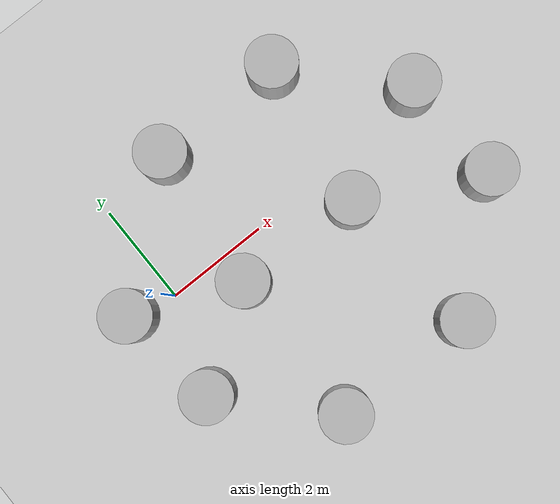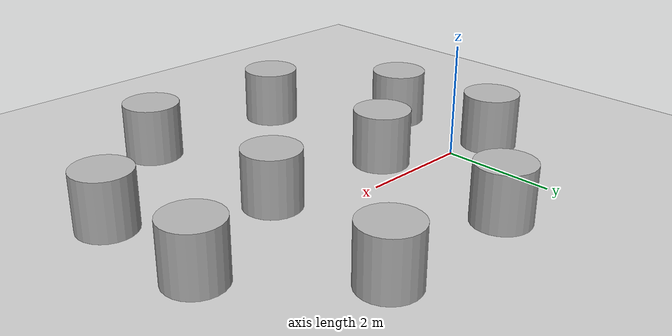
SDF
<sdf version='1.9'>
  <world name='empty'>
    <physics name='1ms' type='ignored'>
      <max_step_size>0.001</max_step_size>
      <real_time_factor>1</real_time_factor>
      <real_time_update_rate>1000</real_time_update_rate>
    </physics>
    <plugin name='gz::sim::systems::Physics' filename='ignition-gazebo-physics-system'/>
    <plugin name='gz::sim::systems::UserCommands' filename='ignition-gazebo-user-commands-system'/>
    <plugin name='gz::sim::systems::SceneBroadcaster' filename='ignition-gazebo-scene-broadcaster-system'/>
    <plugin name='gz::sim::systems::Contact' filename='ignition-gazebo-contact-system'/>
    <gravity>0 0 -9.8</gravity>
    <magnetic_field>6e-06 2.3e-05 -4.2e-05</magnetic_field>
    <atmosphere type='adiabatic'/>
    <scene>
      <ambient>0.4 0.4 0.4 1</ambient>
      <background>0.7 0.7 0.7 1</background>
      <shadows>true</shadows>
    </scene>
    <model name='ground_plane'>
      <static>true</static>
      <link name='link'>
        <collision name='collision'>
          <geometry>
            <plane>
              <normal>0 0 1</normal>
              <size>100 100</size>
            </plane>
          </geometry>
          <surface>
            <friction>
              <ode/>
            </friction>
            <bounce/>
            <contact/>
          </surface>
        </collision>
        <visual name='visual'>
          <geometry>
            <plane>
              <normal>0 0 1</normal>
              <size>100 100</size>
            </plane>
          </geometry>
          <material>
            <ambient>0.8 0.8 0.8 1</ambient>
            <diffuse>0.8 0.8 0.8 1</diffuse>
            <specular>0.8 0.8 0.8 1</specular>
          </material>
        </visual>
        <pose>0 0 0 0 -0 0</pose>
        <inertial>
          <pose>0 0 0 0 -0 0</pose>
          <mass>1</mass>
          <inertia>
            <ixx>1</ixx>
            <ixy>0</ixy>
            <ixz>0</ixz>
            <iyy>1</iyy>
            <iyz>0</iyz>
            <izz>1</izz>
          </inertia>
        </inertial>
        <enable_wind>false</enable_wind>
      </link>
      <pose>0 0 0 0 -0 0</pose>
      <self_collide>false</self_collide>
    </model>
    <model name='cylinder'>
      <pose>4.06462 2.13311 0.5 0 -0 0</pose>
      <link name='cylinder_link'>
        <inertial>
          <inertia>
            <ixx>0.14580000000000001</ixx>
            <ixy>0</ixy>
            <ixz>0</ixz>
            <iyy>0.14580000000000001</iyy>
            <iyz>0</iyz>
            <izz>0.125</izz>
          </inertia>
          <mass>1</mass>
          <pose>0 0 0 0 -0 0</pose>
        </inertial>
        <collision name='cylinder_collision'>
          <geometry>
            <cylinder>
              <radius>0.5</radius>
              <length>1</length>
            </cylinder>
          </geometry>
          <surface>
            <friction>
              <ode/>
            </friction>
            <bounce/>
            <contact/>
          </surface>
        </collision>
        <visual name='cylinder_visual'>
          <geometry>
            <cylinder>
              <radius>0.5</radius>
              <length>1</length>
            </cylinder>
          </geometry>
          <material>
            <ambient>0.3 0.3 0.3 1</ambient>
            <diffuse>0.7 0.7 0.7 1</diffuse>
            <specular>1 1 1 1</specular>
          </material>
        </visual>
        <pose>0 0 0 0 -0 0</pose>
        <enable_wind>false</enable_wind>
      </link>
      <static>false</static>
      <self_collide>false</self_collide>
    </model>
    <model name='cylinder_1'>
      <pose>5.84793 0.239717 0.5 0 -0 0</pose>
      <link name='cylinder_link'>
        <inertial>
          <inertia>
            <ixx>0.14580000000000001</ixx>
            <ixy>0</ixy>
            <ixz>0</ixz>
            <iyy>0.14580000000000001</iyy>
            <iyz>0</iyz>
            <izz>0.125</izz>
          </inertia>
          <mass>1</mass>
        </inertial>
        <collision name='cylinder_collision'>
          <geometry>
            <cylinder>
              <radius>0.5</radius>
              <length>1</length>
            </cylinder>
          </geometry>
          <surface>
            <friction>
              <ode/>
            </friction>
            <bounce/>
            <contact/>
          </surface>
        </collision>
        <visual name='cylinder_visual'>
          <geometry>
            <cylinder>
              <radius>0.5</radius>
              <length>1</length>
            </cylinder>
          </geometry>
          <material>
            <ambient>0.3 0.3 0.3 1</ambient>
            <diffuse>0.7 0.7 0.7 1</diffuse>
            <specular>1 1 1 1</specular>
          </material>
        </visual>
      </link>
      <static>false</static>
      <self_collide>false</self_collide>
    </model>
    <model name='cylinder_2'>
      <pose>5.9165 -1.87991 0.5 0 -0 0</pose>
      <link name='cylinder_link'>
        <inertial>
          <inertia>
            <ixx>0.14580000000000001</ixx>
            <ixy>0</ixy>
            <ixz>0</ixz>
            <iyy>0.14580000000000001</iyy>
            <iyz>0</iyz>
            <izz>0.125</izz>
          </inertia>
          <mass>1</mass>
        </inertial>
        <collision name='cylinder_collision'>
          <geometry>
            <cylinder>
              <radius>0.5</radius>
              <length>1</length>
            </cylinder>
          </geometry>
          <surface>
            <friction>
              <ode/>
            </friction>
            <bounce/>
            <contact/>
          </surface>
        </collision>
        <visual name='cylinder_visual'>
          <geometry>
            <cylinder>
              <radius>0.5</radius>
              <length>1</length>
            </cylinder>
          </geometry>
          <material>
            <ambient>0.3 0.3 0.3 1</ambient>
            <diffuse>0.7 0.7 0.7 1</diffuse>
            <specular>1 1 1 1</specular>
          </material>
        </visual>
      </link>
      <static>false</static>
      <self_collide>false</self_collide>
    </model>
    <model name='cylinder_3'>
      <pose>3.84673 -3.6952 0.5 0 -0 0</pose>
      <link name='cylinder_link'>
        <inertial>
          <inertia>
            <ixx>0.14580000000000001</ixx>
            <ixy>0</ixy>
            <ixz>0</ixz>
            <iyy>0.14580000000000001</iyy>
            <iyz>0</iyz>
            <izz>0.125</izz>
          </inertia>
          <mass>1</mass>
        </inertial>
        <collision name='cylinder_collision'>
          <geometry>
            <cylinder>
              <radius>0.5</radius>
              <length>1</length>
            </cylinder>
          </geometry>
          <surface>
            <friction>
              <ode/>
            </friction>
            <bounce/>
            <contact/>
          </surface>
        </collision>
        <visual name='cylinder_visual'>
          <geometry>
            <cylinder>
              <radius>0.5</radius>
              <length>1</length>
            </cylinder>
          </geometry>
          <material>
            <ambient>0.3 0.3 0.3 1</ambient>
            <diffuse>0.7 0.7 0.7 1</diffuse>
            <specular>1 1 1 1</specular>
          </material>
        </visual>
      </link>
      <static>false</static>
      <self_collide>false</self_collide>
    </model>
    <model name='cylinder_4'>
      <pose>1.11398 -3.64121 0.5 0 -0 0</pose>
      <link name='cylinder_link'>
        <inertial>
          <inertia>
            <ixx>0.14580000000000001</ixx>
            <ixy>0</ixy>
            <ixz>0</ixz>
            <iyy>0.14580000000000001</iyy>
            <iyz>0</iyz>
            <izz>0.125</izz>
          </inertia>
          <mass>1</mass>
        </inertial>
        <collision name='cylinder_collision'>
          <geometry>
            <cylinder>
              <radius>0.5</radius>
              <length>1</length>
            </cylinder>
          </geometry>
          <surface>
            <friction>
              <ode/>
            </friction>
            <bounce/>
            <contact/>
          </surface>
        </collision>
        <visual name='cylinder_visual'>
          <geometry>
            <cylinder>
              <radius>0.5</radius>
              <length>1</length>
            </cylinder>
          </geometry>
          <material>
            <ambient>0.3 0.3 0.3 1</ambient>
            <diffuse>0.7 0.7 0.7 1</diffuse>
            <specular>1 1 1 1</specular>
          </material>
        </visual>
      </link>
      <static>false</static>
      <self_collide>false</self_collide>
    </model>
    <model name='cylinder_5'>
      <pose>-0.608622 -1.82767 0.5 0 -0 0</pose>
      <link name='cylinder_link'>
        <inertial>
          <inertia>
            <ixx>0.14580000000000001</ixx>
            <ixy>0</ixy>
            <ixz>0</ixz>
            <iyy>0.14580000000000001</iyy>
            <iyz>0</iyz>
            <izz>0.125</izz>
          </inertia>
          <mass>1</mass>
        </inertial>
        <collision name='cylinder_collision'>
          <geometry>
            <cylinder>
              <radius>0.5</radius>
              <length>1</length>
            </cylinder>
          </geometry>
          <surface>
            <friction>
              <ode/>
            </friction>
            <bounce/>
            <contact/>
          </surface>
        </collision>
        <visual name='cylinder_visual'>
          <geometry>
            <cylinder>
              <radius>0.5</radius>
              <length>1</length>
            </cylinder>
          </geometry>
          <material>
            <ambient>0.3 0.3 0.3 1</ambient>
            <diffuse>0.7 0.7 0.7 1</diffuse>
            <specular>1 1 1 1</specular>
          </material>
        </visual>
      </link>
      <static>false</static>
      <self_collide>false</self_collide>
    </model>
    <model name='cylinder_6'>
      <pose>-0.836284 0.197467 0.5 0 -0 0</pose>
      <link name='cylinder_link'>
        <inertial>
          <inertia>
            <ixx>0.14580000000000001</ixx>
            <ixy>0</ixy>
            <ixz>0</ixz>
            <iyy>0.14580000000000001</iyy>
            <iyz>0</iyz>
            <izz>0.125</izz>
          </inertia>
          <mass>1</mass>
        </inertial>
        <collision name='cylinder_collision'>
          <geometry>
            <cylinder>
              <radius>0.5</radius>
              <length>1</length>
            </cylinder>
          </geometry>
          <surface>
            <friction>
              <ode/>
            </friction>
            <bounce/>
            <contact/>
          </surface>
        </collision>
        <visual name='cylinder_visual'>
          <geometry>
            <cylinder>
              <radius>0.5</radius>
              <length>1</length>
            </cylinder>
          </geometry>
          <material>
            <ambient>0.3 0.3 0.3 1</ambient>
            <diffuse>0.7 0.7 0.7 1</diffuse>
            <specular>1 1 1 1</specular>
          </material>
        </visual>
      </link>
      <static>false</static>
      <self_collide>false</self_collide>
    </model>
    <model name='cylinder_7'>
      <pose>1.47805 2.119 0.5 0 -0 0</pose>
      <link name='cylinder_link'>
        <inertial>
          <inertia>
            <ixx>0.14580000000000001</ixx>
            <ixy>0</ixy>
            <ixz>0</ixz>
            <iyy>0.14580000000000001</iyy>
            <iyz>0</iyz>
            <izz>0.125</izz>
          </inertia>
          <mass>1</mass>
        </inertial>
        <collision name='cylinder_collision'>
          <geometry>
            <cylinder>
              <radius>0.5</radius>
              <length>1</length>
            </cylinder>
          </geometry>
          <surface>
            <friction>
              <ode/>
            </friction>
            <bounce/>
            <contact/>
          </surface>
        </collision>
        <visual name='cylinder_visual'>
          <geometry>
            <cylinder>
              <radius>0.5</radius>
              <length>1</length>
            </cylinder>
          </geometry>
          <material>
            <ambient>0.3 0.3 0.3 1</ambient>
            <diffuse>0.7 0.7 0.7 1</diffuse>
            <specular>1 1 1 1</specular>
          </material>
        </visual>
      </link>
      <static>false</static>
      <self_collide>false</self_collide>
    </model>
    <model name='cylinder_8'>
      <pose>3.63896 -0.708996 0.5 0 -0 0</pose>
      <link name='cylinder_link'>
        <inertial>
          <inertia>
            <ixx>0.14580000000000001</ixx>
            <ixy>0</ixy>
            <ixz>0</ixz>
            <iyy>0.14580000000000001</iyy>
            <iyz>0</iyz>
            <izz>0.125</izz>
          </inertia>
          <mass>1</mass>
        </inertial>
        <collision name='cylinder_collision'>
          <geometry>
            <cylinder>
              <radius>0.5</radius>
              <length>1</length>
            </cylinder>
          </geometry>
          <surface>
            <friction>
              <ode/>
            </friction>
            <bounce/>
            <contact/>
          </surface>
        </collision>
        <visual name='cylinder_visual'>
          <geometry>
            <cylinder>
              <radius>0.5</radius>
              <length>1</length>
            </cylinder>
          </geometry>
          <material>
            <ambient>0.3 0.3 0.3 1</ambient>
            <diffuse>0.7 0.7 0.7 1</diffuse>
            <specular>1 1 1 1</specular>
          </material>
        </visual>
      </link>
      <static>false</static>
      <self_collide>false</self_collide>
    </model>
    <model name='cylinder_9'>
      <pose>1.18439 -0.630759 0.5 0 -0 0</pose>
      <link name='cylinder_link'>
        <inertial>
          <inertia>
            <ixx>0.14580000000000001</ixx>
            <ixy>0</ixy>
            <ixz>0</ixz>
            <iyy>0.14580000000000001</iyy>
            <iyz>0</iyz>
            <izz>0.125</izz>
          </inertia>
          <mass>1</mass>
        </inertial>
        <collision name='cylinder_collision'>
          <geometry>
            <cylinder>
              <radius>0.5</radius>
              <length>1</length>
            </cylinder>
          </geometry>
          <surface>
            <friction>
              <ode/>
            </friction>
            <bounce/>
            <contact/>
          </surface>
        </collision>
        <visual name='cylinder_visual'>
          <geometry>
            <cylinder>
              <radius>0.5</radius>
              <length>1</length>
            </cylinder>
          </geometry>
          <material>
            <ambient>0.3 0.3 0.3 1</ambient>
            <diffuse>0.7 0.7 0.7 1</diffuse>
            <specular>1 1 1 1</specular>
          </material>
        </visual>
      </link>
      <static>false</static>
      <self_collide>false</self_collide>
    </model>
    <light name='sun' type='directional'>
      <pose>0 0 10 0 -0 0</pose>
      <cast_shadows>true</cast_shadows>
      <intensity>1</intensity>
      <direction>-0.5 0.1 -0.9</direction>
      <diffuse>0.8 0.8 0.8 1</diffuse>
      <specular>0.2 0.2 0.2 1</specular>
      <attenuation>
        <range>1000</range>
        <linear>0.01</linear>
        <constant>0.90000000000000002</constant>
        <quadratic>0.001</quadratic>
      </attenuation>
      <spot>
        <inner_angle>0</inner_angle>
        <outer_angle>0</outer_angle>
        <falloff>0</falloff>
      </spot>
    </light>
  </world>
</sdf>
